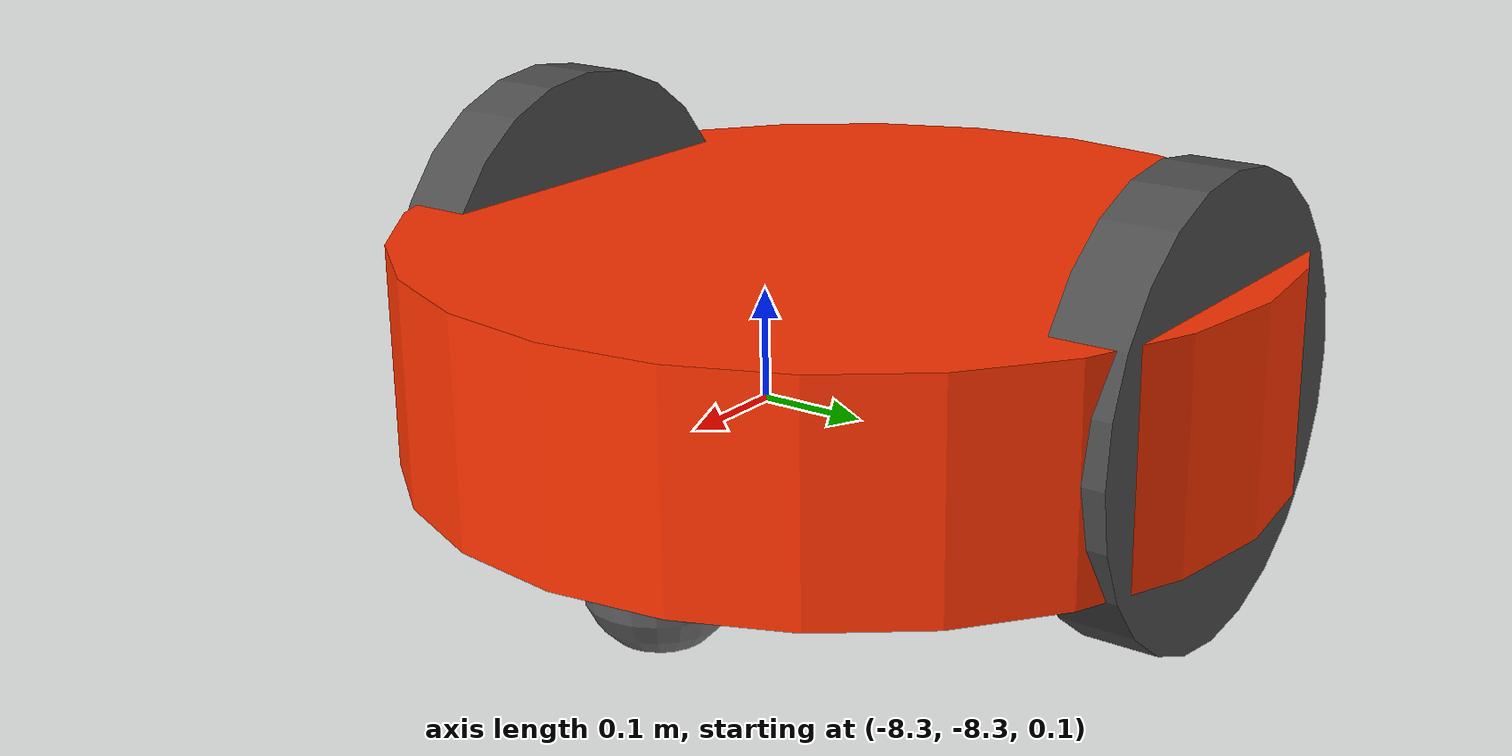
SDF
<?xml version="1.0" ?>
<sdf version="1.8">
  <model name="maze_robot">
    <pose>-8 -8 0.3 0 0 0</pose>
    <static>false</static>

    <!-- Base Link -->
    <link name="base_link">
      <inertial>
        <mass>5.0</mass>
        <inertia>
          <ixx>0.0395</ixx>
          <iyy>0.0395</iyy>
          <izz>0.045</izz>
        </inertia>
      </inertial>

      <collision name="collision">
        <geometry>
          <cylinder>
            <radius>0.3</radius>
            <length>0.15</length>
          </cylinder>
        </geometry>
      </collision>

      <visual name="visual">
        <geometry>
          <cylinder>
            <radius>0.3</radius>
            <length>0.15</length>
          </cylinder>
        </geometry>
        <material>
          <ambient>1.0 0.0 0.0 1</ambient>
          <diffuse>1.0 0.2 0.0 1</diffuse>
          <emissive>0.5 0.0 0.0 1</emissive>
        </material>
      </visual>

      <!-- IMU Sensor -->
      <sensor name="imu_sensor" type="imu">
        <always_on>1</always_on>
        <update_rate>100</update_rate>
        <topic>imu</topic>
        <imu>
          <angular_velocity>
            <x>
              <noise type="gaussian">
                <mean>0.0</mean>
                <stddev>2e-4</stddev>
              </noise>
            </x>
            <y>
              <noise type="gaussian">
                <mean>0.0</mean>
                <stddev>2e-4</stddev>
              </noise>
            </y>
            <z>
              <noise type="gaussian">
                <mean>0.0</mean>
                <stddev>2e-4</stddev>
              </noise>
            </z>
          </angular_velocity>
          <linear_acceleration>
            <x>
              <noise type="gaussian">
                <mean>0.0</mean>
                <stddev>1.7e-2</stddev>
              </noise>
            </x>
            <y>
              <noise type="gaussian">
                <mean>0.0</mean>
                <stddev>1.7e-2</stddev>
              </noise>
            </y>
            <z>
              <noise type="gaussian">
                <mean>0.0</mean>
                <stddev>1.7e-2</stddev>
              </noise>
            </z>
          </linear_acceleration>
        </imu>
      </sensor>

      <!-- 2D Lidar  -->
      <sensor name="lidar" type="gpu_lidar">
        <pose>0 0 0.25 0 0 0</pose>
        <topic>lidar</topic>
        <update_rate>10</update_rate>
        <ray>
          <scan>
            <horizontal>
              <samples>360</samples>
              <resolution>1</resolution>
              <min_angle>-3.14159</min_angle>
              <max_angle>3.14159</max_angle>
            </horizontal>
          </scan>
          <range>
            <min>0.35</min>
            <max>10.0</max>
            <resolution>0.01</resolution>
          </range>
          <noise>
            <type>gaussian</type>
            <mean>0.0</mean>
            <stddev>0.01</stddev>
          </noise>
        </ray>
        <always_on>1</always_on>
        <visualize>true</visualize>
      </sensor>

      <!-- Camera-->
      <sensor name="bottom_camera" type="camera">
        <pose>0 0 -0.05 0 1.5708 0</pose>
        <topic>camera/bottom</topic>
        <update_rate>10</update_rate>
        <camera>
          <horizontal_fov>1.047</horizontal_fov>
          <image>
            <width>320</width>
            <height>240</height>
            <format>R8G8B8</format>
          </image>
          <clip>
            <near>0.01</near>
            <far>2.0</far>
          </clip>
        </camera>
        <always_on>1</always_on>
        <visualize>false</visualize>
      </sensor>
    </link>

    <!-- Left Wheel -->
    <link name="left_wheel">
      <pose relative_to="base_link">0 0.25 0 -1.5707 0 0</pose>
      <inertial>
        <mass>0.5</mass>
        <inertia>
          <ixx>0.0016</ixx>
          <iyy>0.0016</iyy>
          <izz>0.0016</izz>
        </inertia>
      </inertial>
      <collision name="collision">
        <geometry>
          <cylinder>
            <radius>0.15</radius>
            <length>0.05</length>
          </cylinder>
        </geometry>
      </collision>
      <visual name="visual">
        <geometry>
          <cylinder>
            <radius>0.15</radius>
            <length>0.05</length>
          </cylinder>
        </geometry>
        <material>
          <ambient>0.2 0.2 0.2 1</ambient>
          <diffuse>0.3 0.3 0.3 1</diffuse>
        </material>
      </visual>
    </link>

    <!-- Right Wheel -->
    <link name="right_wheel">
      <pose relative_to="base_link">0 -0.25 0 -1.5707 0 0</pose>
      <inertial>
        <mass>0.5</mass>
        <inertia>
          <ixx>0.0016</ixx>
          <iyy>0.0016</iyy>
          <izz>0.0016</izz>
        </inertia>
      </inertial>
      <collision name="collision">
        <geometry>
          <cylinder>
            <radius>0.15</radius>
            <length>0.05</length>
          </cylinder>
        </geometry>
      </collision>
      <visual name="visual">
        <geometry>
          <cylinder>
            <radius>0.15</radius>
            <length>0.05</length>
          </cylinder>
        </geometry>
        <material>
          <ambient>0.2 0.2 0.2 1</ambient>
          <diffuse>0.3 0.3 0.3 1</diffuse>
        </material>
      </visual>
    </link>

    <!-- Caster Wheel -->
    <link name="caster_wheel">
      <pose relative_to="base_link">0.2 0 -0.1 0 0 0</pose>
      <inertial>
        <mass>0.1</mass>
        <inertia>
          <ixx>0.0001</ixx>
          <iyy>0.0001</iyy>
          <izz>0.0001</izz>
        </inertia>
      </inertial>
      <collision name="collision">
        <geometry>
          <sphere>
            <radius>0.05</radius>
          </sphere>
        </geometry>
        <surface>
          <friction>
            <ode>
              <mu>0.01</mu>
              <mu2>0.01</mu2>
            </ode>
          </friction>
        </surface>
      </collision>
      <visual name="visual">
        <geometry>
          <sphere>
            <radius>0.05</radius>
          </sphere>
        </geometry>
        <material>
          <ambient>0.3 0.3 0.3 1</ambient>
          <diffuse>0.4 0.4 0.4 1</diffuse>
        </material>
      </visual>
    </link>

    <!-- Left Wheel Joint -->
    <joint name="left_wheel_joint" type="revolute">
      <parent>base_link</parent>
      <child>left_wheel</child>
      <axis>
        <xyz>0 0 1</xyz>
        <limit>
          <lower>-1e16</lower>
          <upper>1e16</upper>
        </limit>
      </axis>
    </joint>

    <!-- Right Wheel Joint -->
    <joint name="right_wheel_joint" type="revolute">
      <parent>base_link</parent>
      <child>right_wheel</child>
      <axis>
        <xyz>0 0 1</xyz>
        <limit>
          <lower>-1e16</lower>
          <upper>1e16</upper>
        </limit>
      </axis>
    </joint>

    <!-- Caster Wheel Joint -->
    <joint name="caster_wheel_joint" type="ball">
      <parent>base_link</parent>
      <child>caster_wheel</child>
    </joint>

    <!-- Differential Drive Plugin -->
    <plugin filename="gz-sim-diff-drive-system" name="gz::sim::systems::DiffDrive">
      <left_joint>left_wheel_joint</left_joint>
      <right_joint>right_wheel_joint</right_joint>
      <wheel_separation>0.5</wheel_separation>
      <wheel_radius>0.15</wheel_radius>
      <odom_publish_frequency>50</odom_publish_frequency>
      <topic>cmd_vel</topic>
      <odom_topic>odom</odom_topic>
      <tf_topic>tf</tf_topic>
      <frame_id>odom</frame_id>
      <child_frame_id>base_link</child_frame_id>
    </plugin>

    <!-- Pose Publisher -->
    <plugin filename="gz-sim-pose-publisher-system" name="gz::sim::systems::PosePublisher">
      <publish_link_pose>true</publish_link_pose>
      <publish_sensor_pose>false</publish_sensor_pose>
      <publish_collision_pose>false</publish_collision_pose>
      <publish_visual_pose>false</publish_visual_pose>
      <publish_nested_model_pose>false</publish_nested_model_pose>
      <update_frequency>50</update_frequency>
    </plugin>

  </model>
</sdf>
